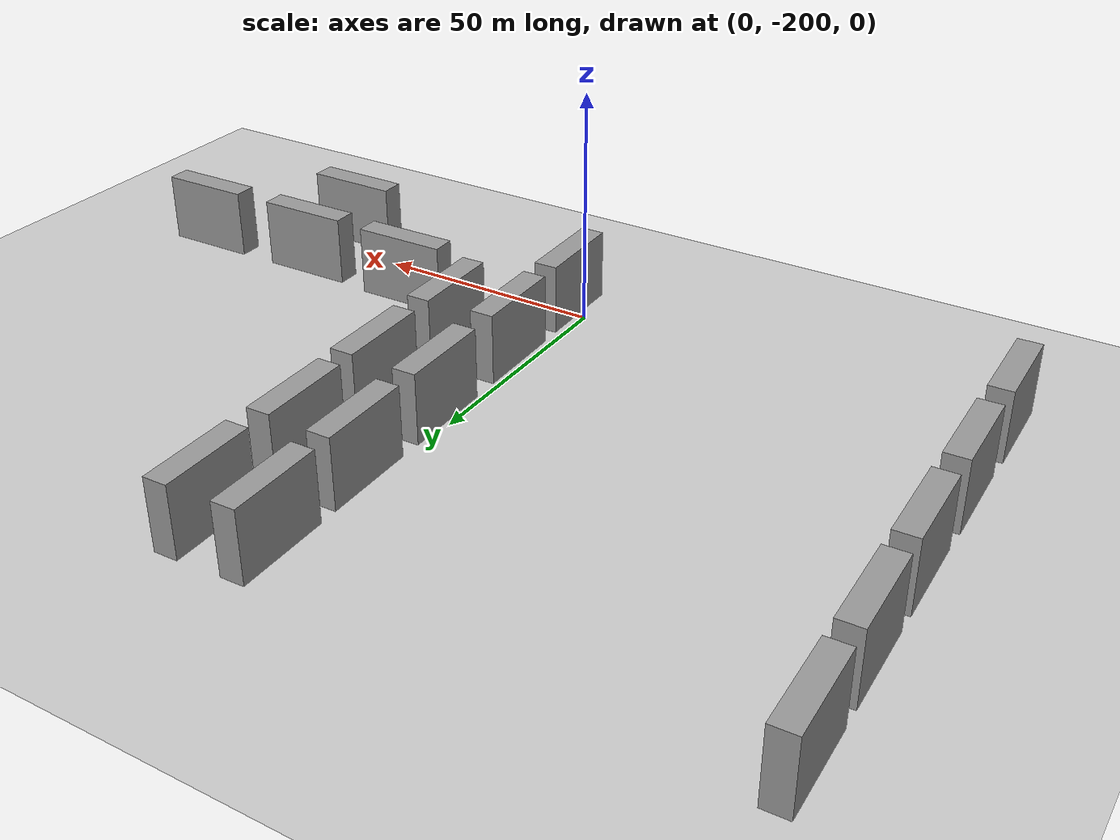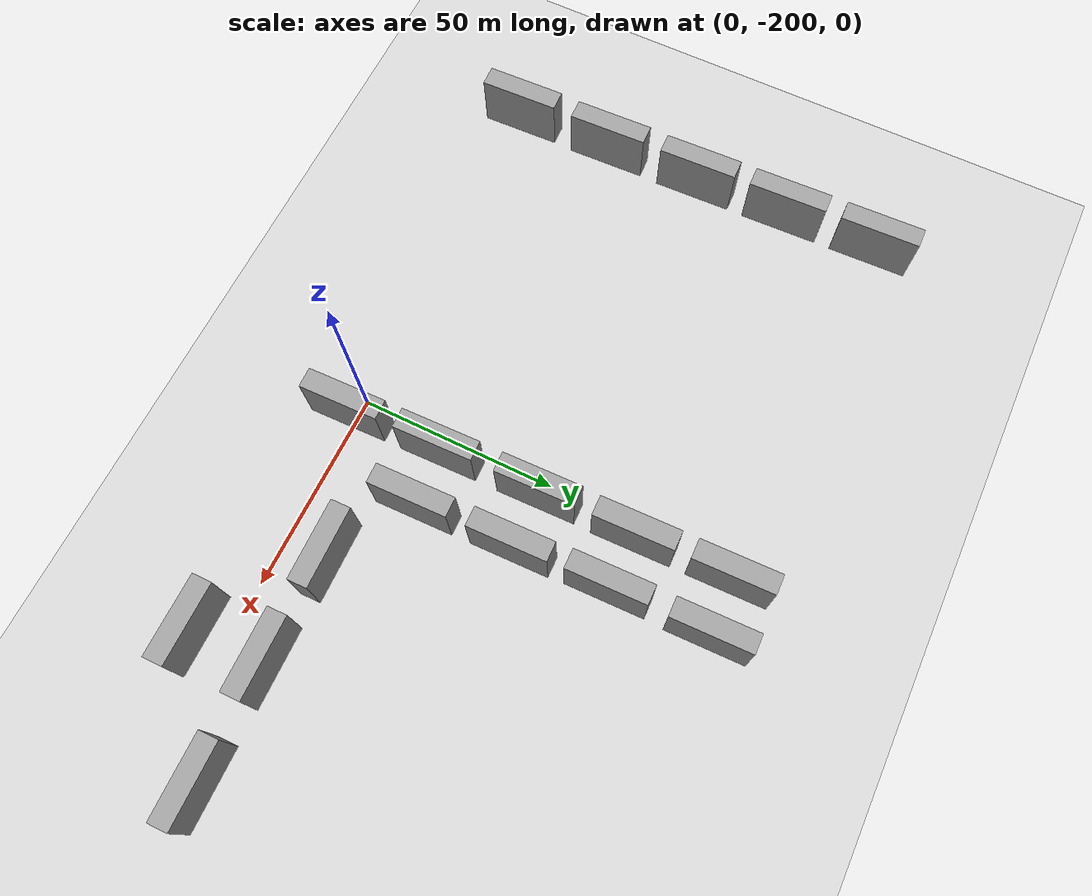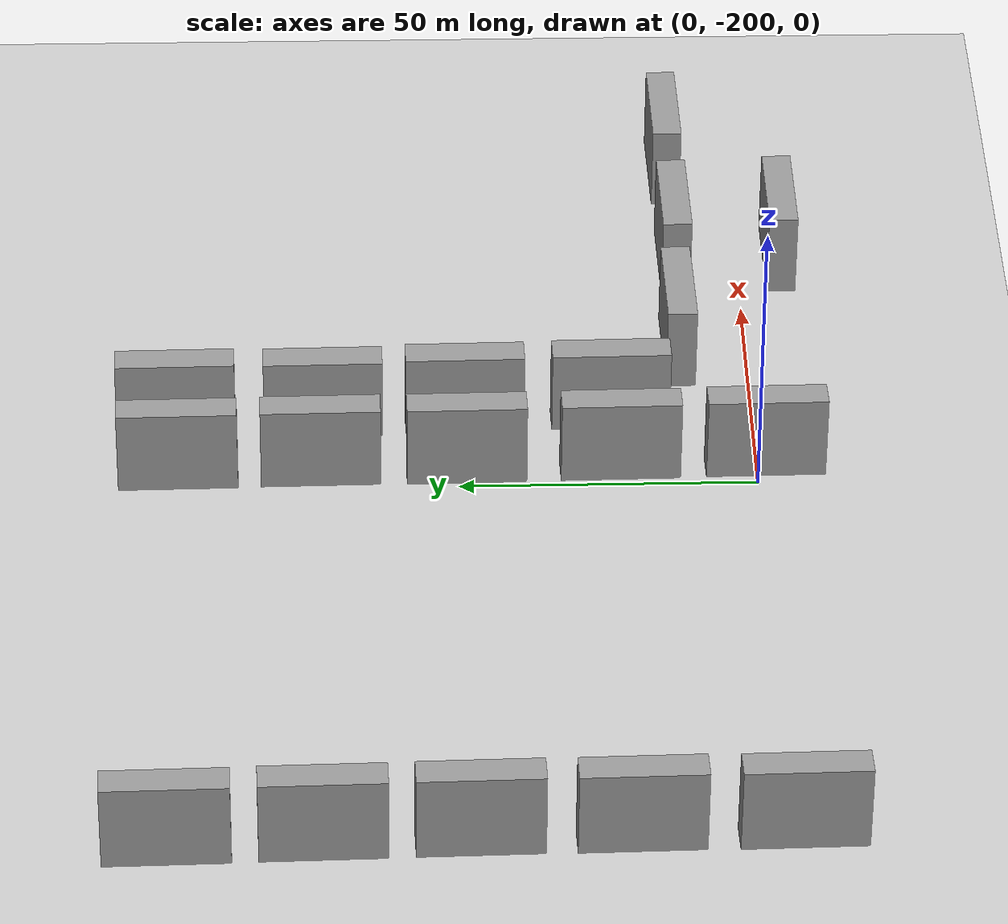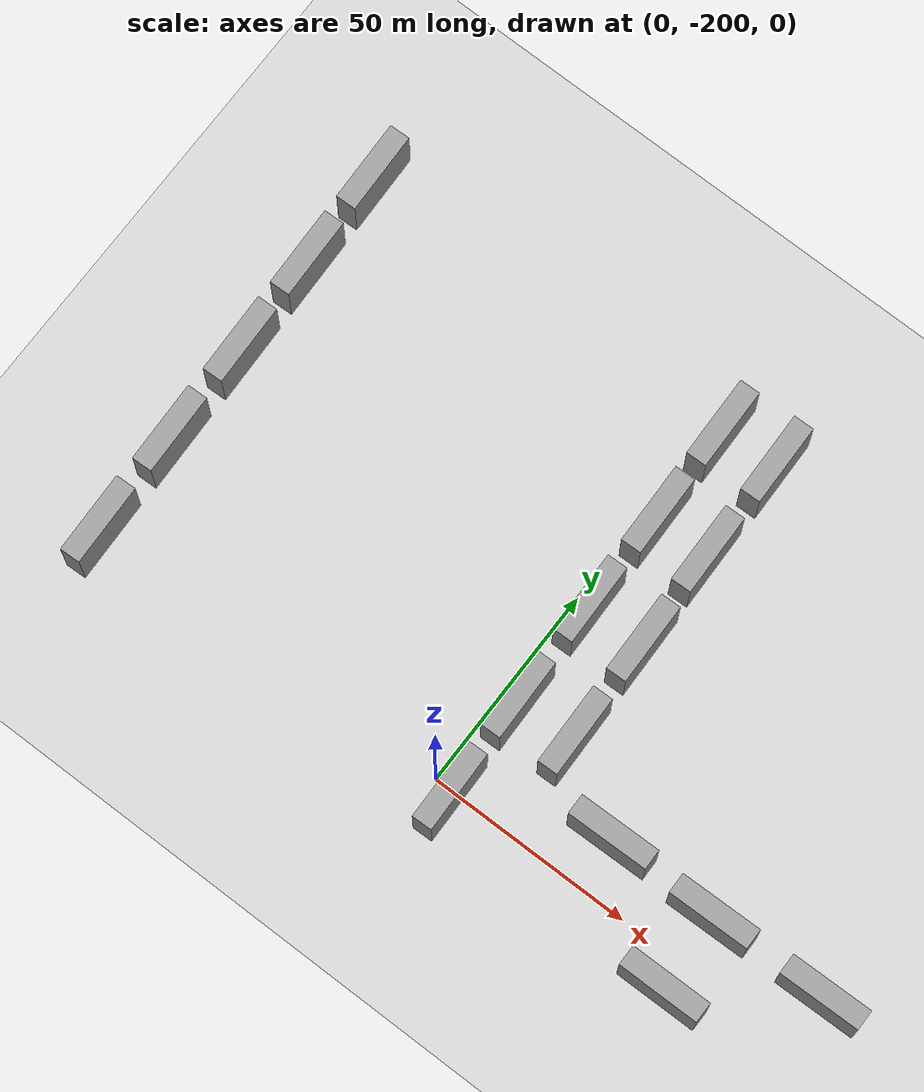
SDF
<sdf version="1.6">
 <world name="darpa_boxes">
  <model name="ground_plane">
   <static>1</static>
   <link name="link">
    <collision name="collision">
     <geometry><plane><normal>0 0 1</normal><size>2000 2000</size></plane></geometry>
     <surface>
      <contact><collide_bitmask>65535</collide_bitmask></contact>
      <friction><ode><mu>100</mu><mu2>50</mu2></ode></friction>
     </surface>
    </collision>
    <visual name="visual">
     <cast_shadows>0</cast_shadows>
     <geometry><plane><normal>0 0 1</normal><size>2000 2000</size></plane></geometry>
     <material>
      <script><uri>file://media/materials/scripts/gazebo.material</uri><name>Gazebo/Grey</name></script>
     </material>
    </visual>
   </link>
  </model>
  <model name="long_box_clone_clone_0">
   <link name="link">
    <inertial>
     <mass>1</mass>
     <inertia>
      <ixx>0.166667</ixx>
      <ixy>0</ixy>
      <ixz>0</ixz>
      <iyy>0.166667</iyy>
      <iyz>0</iyz>
      <izz>0.166667</izz>
     </inertia>
     <pose>0 0 7.5 0 -0 0</pose>
    </inertial>
    <visual name="visual">
     <geometry><box><size>5 20 15</size></box></geometry>
     <material>
      <script><name>Gazebo/Grey</name><uri>file://media/materials/scripts/gazebo.material</uri></script>
      <shader type="vertex"><normal_map>__default__</normal_map></shader>
      <ambient>0.3 0.3 0.3 1</ambient>
      <diffuse>0.7 0.7 0.7 1</diffuse>
      <specular>0.01 0.01 0.01 1</specular>
      <emissive>0 0 0 1</emissive>
     </material>
     <pose>0 0 7.5 0 -0 0</pose>
    </visual>
    <collision name="collision">
     <pose>0 0 7.5 0 -0 0</pose>
     <geometry><box><size>5 20 15</size></box></geometry>
     <surface>
      <friction>
       <ode><mu>1</mu><mu2>1</mu2><fdir1>0 0 0</fdir1><slip1>0</slip1><slip2>0</slip2></ode>
       <torsional>
        <coefficient>1</coefficient>
        <patch_radius>0</patch_radius>
        <surface_radius>0</surface_radius>
        <use_patch_radius>1</use_patch_radius>
        <ode><slip>0</slip></ode>
       </torsional>
      </friction>
      <bounce><restitution_coefficient>0</restitution_coefficient><threshold>1e+06</threshold></bounce>
      <contact>
       <collide_without_contact>0</collide_without_contact>
       <collide_without_contact_bitmask>1</collide_without_contact_bitmask>
       <collide_bitmask>1</collide_bitmask>
       <ode>
        <soft_cfm>0</soft_cfm>
        <soft_erp>0.2</soft_erp>
        <kp>1e+13</kp>
        <kd>1</kd>
        <max_vel>0.01</max_vel>
        <min_depth>0</min_depth>
       </ode>
       <bullet>
        <split_impulse>1</split_impulse>
        <split_impulse_penetration_threshold>-0.01</split_impulse_penetration_threshold>
        <soft_cfm>0</soft_cfm>
        <soft_erp>0.2</soft_erp>
        <kp>1e+13</kp>
        <kd>1</kd>
       </bullet>
      </contact>
     </surface>
    </collision>
   </link>
   <static>1</static>
   <pose>2.95301 -102.999 -0.049551 0.005047 -0.000114 0.022472</pose>
  </model>
  <model name="long_box_clone_clone_1">
   <link name="link">
    <inertial>
     <mass>1</mass>
     <inertia>
      <ixx>0.166667</ixx>
      <ixy>0</ixy>
      <ixz>0</ixz>
      <iyy>0.166667</iyy>
      <iyz>0</iyz>
      <izz>0.166667</izz>
     </inertia>
     <pose>0 0 7.5 0 -0 0</pose>
    </inertial>
    <visual name="visual">
     <geometry><box><size>5 20 15</size></box></geometry>
     <material>
      <script><name>Gazebo/Grey</name><uri>file://media/materials/scripts/gazebo.material</uri></script>
      <shader type="vertex"><normal_map>__default__</normal_map></shader>
      <ambient>0.3 0.3 0.3 1</ambient>
      <diffuse>0.7 0.7 0.7 1</diffuse>
      <specular>0.01 0.01 0.01 1</specular>
      <emissive>0 0 0 1</emissive>
     </material>
     <pose>0 0 7.5 0 -0 0</pose>
    </visual>
    <collision name="collision">
     <pose>0 0 7.5 0 -0 0</pose>
     <geometry><box><size>5 20 15</size></box></geometry>
     <surface>
      <friction>
       <ode><mu>1</mu><mu2>1</mu2><fdir1>0 0 0</fdir1><slip1>0</slip1><slip2>0</slip2></ode>
       <torsional>
        <coefficient>1</coefficient>
        <patch_radius>0</patch_radius>
        <surface_radius>0</surface_radius>
        <use_patch_radius>1</use_patch_radius>
        <ode><slip>0</slip></ode>
       </torsional>
      </friction>
      <bounce><restitution_coefficient>0</restitution_coefficient><threshold>1e+06</threshold></bounce>
      <contact>
       <collide_without_contact>0</collide_without_contact>
       <collide_without_contact_bitmask>1</collide_without_contact_bitmask>
       <collide_bitmask>1</collide_bitmask>
       <ode>
        <soft_cfm>0</soft_cfm>
        <soft_erp>0.2</soft_erp>
        <kp>1e+13</kp>
        <kd>1</kd>
        <max_vel>0.01</max_vel>
        <min_depth>0</min_depth>
       </ode>
       <bullet>
        <split_impulse>1</split_impulse>
        <split_impulse_penetration_threshold>-0.01</split_impulse_penetration_threshold>
        <soft_cfm>0</soft_cfm>
        <soft_erp>0.2</soft_erp>
        <kp>1e+13</kp>
        <kd>1</kd>
       </bullet>
      </contact>
     </surface>
    </collision>
   </link>
   <static>1</static>
   <pose>3.43621 -126.848 -0.049551 0.005047 -0.000114 0.022472</pose>
  </model>
  <model name="long_box_clone_clone_2">
   <link name="link">
    <inertial>
     <mass>1</mass>
     <inertia>
      <ixx>0.166667</ixx>
      <ixy>0</ixy>
      <ixz>0</ixz>
      <iyy>0.166667</iyy>
      <iyz>0</iyz>
      <izz>0.166667</izz>
     </inertia>
     <pose>0 0 7.5 0 -0 0</pose>
    </inertial>
    <visual name="visual">
     <geometry><box><size>5 20 15</size></box></geometry>
     <material>
      <script><name>Gazebo/Grey</name><uri>file://media/materials/scripts/gazebo.material</uri></script>
      <shader type="vertex"><normal_map>__default__</normal_map></shader>
      <ambient>0.3 0.3 0.3 1</ambient>
      <diffuse>0.7 0.7 0.7 1</diffuse>
      <specular>0.01 0.01 0.01 1</specular>
      <emissive>0 0 0 1</emissive>
     </material>
     <pose>0 0 7.5 0 -0 0</pose>
    </visual>
    <collision name="collision">
     <pose>0 0 7.5 0 -0 0</pose>
     <geometry><box><size>5 20 15</size></box></geometry>
     <surface>
      <friction>
       <ode><mu>1</mu><mu2>1</mu2><fdir1>0 0 0</fdir1><slip1>0</slip1><slip2>0</slip2></ode>
       <torsional>
        <coefficient>1</coefficient>
        <patch_radius>0</patch_radius>
        <surface_radius>0</surface_radius>
        <use_patch_radius>1</use_patch_radius>
        <ode><slip>0</slip></ode>
       </torsional>
      </friction>
      <bounce><restitution_coefficient>0</restitution_coefficient><threshold>1e+06</threshold></bounce>
      <contact>
       <collide_without_contact>0</collide_without_contact>
       <collide_without_contact_bitmask>1</collide_without_contact_bitmask>
       <collide_bitmask>1</collide_bitmask>
       <ode>
        <soft_cfm>0</soft_cfm>
        <soft_erp>0.2</soft_erp>
        <kp>1e+13</kp>
        <kd>1</kd>
        <max_vel>0.01</max_vel>
        <min_depth>0</min_depth>
       </ode>
       <bullet>
        <split_impulse>1</split_impulse>
        <split_impulse_penetration_threshold>-0.01</split_impulse_penetration_threshold>
        <soft_cfm>0</soft_cfm>
        <soft_erp>0.2</soft_erp>
        <kp>1e+13</kp>
        <kd>1</kd>
       </bullet>
      </contact>
     </surface>
    </collision>
   </link>
   <static>1</static>
   <pose>3.68929 -151.222 -0.049551 0.005047 -0.000114 0.022472</pose>
  </model>
  <model name="long_box_clone_clone_3">
   <link name="link">
    <inertial>
     <mass>1</mass>
     <inertia>
      <ixx>0.166667</ixx>
      <ixy>0</ixy>
      <ixz>0</ixz>
      <iyy>0.166667</iyy>
      <iyz>0</iyz>
      <izz>0.166667</izz>
     </inertia>
     <pose>0 0 7.5 0 -0 0</pose>
    </inertial>
    <visual name="visual">
     <geometry><box><size>5 20 15</size></box></geometry>
     <material>
      <script><name>Gazebo/Grey</name><uri>file://media/materials/scripts/gazebo.material</uri></script>
      <shader type="vertex"><normal_map>__default__</normal_map></shader>
      <ambient>0.3 0.3 0.3 1</ambient>
      <diffuse>0.7 0.7 0.7 1</diffuse>
      <specular>0.01 0.01 0.01 1</specular>
      <emissive>0 0 0 1</emissive>
     </material>
     <pose>0 0 7.5 0 -0 0</pose>
    </visual>
    <collision name="collision">
     <pose>0 0 7.5 0 -0 0</pose>
     <geometry><box><size>5 20 15</size></box></geometry>
     <surface>
      <friction>
       <ode><mu>1</mu><mu2>1</mu2><fdir1>0 0 0</fdir1><slip1>0</slip1><slip2>0</slip2></ode>
       <torsional>
        <coefficient>1</coefficient>
        <patch_radius>0</patch_radius>
        <surface_radius>0</surface_radius>
        <use_patch_radius>1</use_patch_radius>
        <ode><slip>0</slip></ode>
       </torsional>
      </friction>
      <bounce><restitution_coefficient>0</restitution_coefficient><threshold>1e+06</threshold></bounce>
      <contact>
       <collide_without_contact>0</collide_without_contact>
       <collide_without_contact_bitmask>1</collide_without_contact_bitmask>
       <collide_bitmask>1</collide_bitmask>
       <ode>
        <soft_cfm>0</soft_cfm>
        <soft_erp>0.2</soft_erp>
        <kp>1e+13</kp>
        <kd>1</kd>
        <max_vel>0.01</max_vel>
        <min_depth>0</min_depth>
       </ode>
       <bullet>
        <split_impulse>1</split_impulse>
        <split_impulse_penetration_threshold>-0.01</split_impulse_penetration_threshold>
        <soft_cfm>0</soft_cfm>
        <soft_erp>0.2</soft_erp>
        <kp>1e+13</kp>
        <kd>1</kd>
       </bullet>
      </contact>
     </surface>
    </collision>
   </link>
   <static>1</static>
   <pose>4.1621 -176.965 -0.049551 0.005047 -0.000114 0.022472</pose>
  </model>
  <model name="long_box_clone_clone_4">
   <link name="link">
    <inertial>
     <mass>1</mass>
     <inertia>
      <ixx>0.166667</ixx>
      <ixy>0</ixy>
      <ixz>0</ixz>
      <iyy>0.166667</iyy>
      <iyz>0</iyz>
      <izz>0.166667</izz>
     </inertia>
     <pose>0 0 7.5 0 -0 0</pose>
    </inertial>
    <visual name="visual">
     <geometry><box><size>5 20 15</size></box></geometry>
     <material>
      <script><name>Gazebo/Grey</name><uri>file://media/materials/scripts/gazebo.material</uri></script>
      <shader type="vertex"><normal_map>__default__</normal_map></shader>
      <ambient>0.3 0.3 0.3 1</ambient>
      <diffuse>0.7 0.7 0.7 1</diffuse>
      <specular>0.01 0.01 0.01 1</specular>
      <emissive>0 0 0 1</emissive>
     </material>
     <pose>0 0 7.5 0 -0 0</pose>
    </visual>
    <collision name="collision">
     <pose>0 0 7.5 0 -0 0</pose>
     <geometry><box><size>5 20 15</size></box></geometry>
     <surface>
      <friction>
       <ode><mu>1</mu><mu2>1</mu2><fdir1>0 0 0</fdir1><slip1>0</slip1><slip2>0</slip2></ode>
       <torsional>
        <coefficient>1</coefficient>
        <patch_radius>0</patch_radius>
        <surface_radius>0</surface_radius>
        <use_patch_radius>1</use_patch_radius>
        <ode><slip>0</slip></ode>
       </torsional>
      </friction>
      <bounce><restitution_coefficient>0</restitution_coefficient><threshold>1e+06</threshold></bounce>
      <contact>
       <collide_without_contact>0</collide_without_contact>
       <collide_without_contact_bitmask>1</collide_without_contact_bitmask>
       <collide_bitmask>1</collide_bitmask>
       <ode>
        <soft_cfm>0</soft_cfm>
        <soft_erp>0.2</soft_erp>
        <kp>1e+13</kp>
        <kd>1</kd>
        <max_vel>0.01</max_vel>
        <min_depth>0</min_depth>
       </ode>
       <bullet>
        <split_impulse>1</split_impulse>
        <split_impulse_penetration_threshold>-0.01</split_impulse_penetration_threshold>
        <soft_cfm>0</soft_cfm>
        <soft_erp>0.2</soft_erp>
        <kp>1e+13</kp>
        <kd>1</kd>
       </bullet>
      </contact>
     </surface>
    </collision>
   </link>
   <static>1</static>
   <pose>4.69386 -201.317 -0.049551 0.005047 -0.000114 0.022472</pose>
  </model>
  <model name="long_box_clone_clone_21">
   <link name="link">
    <inertial>
     <mass>1</mass>
     <inertia>
      <ixx>0.166667</ixx>
      <ixy>0</ixy>
      <ixz>0</ixz>
      <iyy>0.166667</iyy>
      <iyz>0</iyz>
      <izz>0.166667</izz>
     </inertia>
     <pose>0 0 7.5 0 -0 0</pose>
    </inertial>
    <visual name="visual">
     <geometry><box><size>5 20 15</size></box></geometry>
     <material>
      <script><name>Gazebo/Grey</name><uri>file://media/materials/scripts/gazebo.material</uri></script>
      <shader type="vertex"><normal_map>__default__</normal_map></shader>
      <ambient>0.3 0.3 0.3 1</ambient>
      <diffuse>0.7 0.7 0.7 1</diffuse>
      <specular>0.01 0.01 0.01 1</specular>
      <emissive>0 0 0 1</emissive>
     </material>
     <pose>0 0 7.5 0 -0 0</pose>
    </visual>
    <collision name="collision">
     <pose>0 0 7.5 0 -0 0</pose>
     <geometry><box><size>5 20 15</size></box></geometry>
     <surface>
      <friction>
       <ode><mu>1</mu><mu2>1</mu2><fdir1>0 0 0</fdir1><slip1>0</slip1><slip2>0</slip2></ode>
       <torsional>
        <coefficient>1</coefficient>
        <patch_radius>0</patch_radius>
        <surface_radius>0</surface_radius>
        <use_patch_radius>1</use_patch_radius>
        <ode><slip>0</slip></ode>
       </torsional>
      </friction>
      <bounce><restitution_coefficient>0</restitution_coefficient><threshold>1e+06</threshold></bounce>
      <contact>
       <collide_without_contact>0</collide_without_contact>
       <collide_without_contact_bitmask>1</collide_without_contact_bitmask>
       <collide_bitmask>1</collide_bitmask>
       <ode>
        <soft_cfm>0</soft_cfm>
        <soft_erp>0.2</soft_erp>
        <kp>1e+13</kp>
        <kd>1</kd>
        <max_vel>0.01</max_vel>
        <min_depth>0</min_depth>
       </ode>
       <bullet>
        <split_impulse>1</split_impulse>
        <split_impulse_penetration_threshold>-0.01</split_impulse_penetration_threshold>
        <soft_cfm>0</soft_cfm>
        <soft_erp>0.2</soft_erp>
        <kp>1e+13</kp>
        <kd>1</kd>
       </bullet>
      </contact>
     </surface>
    </collision>
   </link>
   <static>1</static>
   <pose>18.4209 -175.838 -0.049551 0.005047 -0.000114 0.022472</pose>
  </model>
  <model name="long_box_clone_clone_22">
   <link name="link">
    <inertial>
     <mass>1</mass>
     <inertia>
      <ixx>0.166667</ixx>
      <ixy>0</ixy>
      <ixz>0</ixz>
      <iyy>0.166667</iyy>
      <iyz>0</iyz>
      <izz>0.166667</izz>
     </inertia>
     <pose>0 0 7.5 0 -0 0</pose>
    </inertial>
    <visual name="visual">
     <geometry><box><size>5 20 15</size></box></geometry>
     <material>
      <script><name>Gazebo/Grey</name><uri>file://media/materials/scripts/gazebo.material</uri></script>
      <shader type="vertex"><normal_map>__default__</normal_map></shader>
      <ambient>0.3 0.3 0.3 1</ambient>
      <diffuse>0.7 0.7 0.7 1</diffuse>
      <specular>0.01 0.01 0.01 1</specular>
      <emissive>0 0 0 1</emissive>
     </material>
     <pose>0 0 7.5 0 -0 0</pose>
    </visual>
    <collision name="collision">
     <pose>0 0 7.5 0 -0 0</pose>
     <geometry><box><size>5 20 15</size></box></geometry>
     <surface>
      <friction>
       <ode><mu>1</mu><mu2>1</mu2><fdir1>0 0 0</fdir1><slip1>0</slip1><slip2>0</slip2></ode>
       <torsional>
        <coefficient>1</coefficient>
        <patch_radius>0</patch_radius>
        <surface_radius>0</surface_radius>
        <use_patch_radius>1</use_patch_radius>
        <ode><slip>0</slip></ode>
       </torsional>
      </friction>
      <bounce><restitution_coefficient>0</restitution_coefficient><threshold>1e+06</threshold></bounce>
      <contact>
       <collide_without_contact>0</collide_without_contact>
       <collide_without_contact_bitmask>1</collide_without_contact_bitmask>
       <collide_bitmask>1</collide_bitmask>
       <ode>
        <soft_cfm>0</soft_cfm>
        <soft_erp>0.2</soft_erp>
        <kp>1e+13</kp>
        <kd>1</kd>
        <max_vel>0.01</max_vel>
        <min_depth>0</min_depth>
       </ode>
       <bullet>
        <split_impulse>1</split_impulse>
        <split_impulse_penetration_threshold>-0.01</split_impulse_penetration_threshold>
        <soft_cfm>0</soft_cfm>
        <soft_erp>0.2</soft_erp>
        <kp>1e+13</kp>
        <kd>1</kd>
       </bullet>
      </contact>
     </surface>
    </collision>
   </link>
   <static>1</static>
   <pose>17.8317 -151.144 -0.049551 0.005047 -0.000114 0.022472</pose>
  </model>
  <model name="long_box_clone_clone_23">
   <link name="link">
    <inertial>
     <mass>1</mass>
     <inertia>
      <ixx>0.166667</ixx>
      <ixy>0</ixy>
      <ixz>0</ixz>
      <iyy>0.166667</iyy>
      <iyz>0</iyz>
      <izz>0.166667</izz>
     </inertia>
     <pose>0 0 7.5 0 -0 0</pose>
    </inertial>
    <visual name="visual">
     <geometry><box><size>5 20 15</size></box></geometry>
     <material>
      <script><name>Gazebo/Grey</name><uri>file://media/materials/scripts/gazebo.material</uri></script>
      <shader type="vertex"><normal_map>__default__</normal_map></shader>
      <ambient>0.3 0.3 0.3 1</ambient>
      <diffuse>0.7 0.7 0.7 1</diffuse>
      <specular>0.01 0.01 0.01 1</specular>
      <emissive>0 0 0 1</emissive>
     </material>
     <pose>0 0 7.5 0 -0 0</pose>
    </visual>
    <collision name="collision">
     <pose>0 0 7.5 0 -0 0</pose>
     <geometry><box><size>5 20 15</size></box></geometry>
     <surface>
      <friction>
       <ode><mu>1</mu><mu2>1</mu2><fdir1>0 0 0</fdir1><slip1>0</slip1><slip2>0</slip2></ode>
       <torsional>
        <coefficient>1</coefficient>
        <patch_radius>0</patch_radius>
        <surface_radius>0</surface_radius>
        <use_patch_radius>1</use_patch_radius>
        <ode><slip>0</slip></ode>
       </torsional>
      </friction>
      <bounce><restitution_coefficient>0</restitution_coefficient><threshold>1e+06</threshold></bounce>
      <contact>
       <collide_without_contact>0</collide_without_contact>
       <collide_without_contact_bitmask>1</collide_without_contact_bitmask>
       <collide_bitmask>1</collide_bitmask>
       <ode>
        <soft_cfm>0</soft_cfm>
        <soft_erp>0.2</soft_erp>
        <kp>1e+13</kp>
        <kd>1</kd>
        <max_vel>0.01</max_vel>
        <min_depth>0</min_depth>
       </ode>
       <bullet>
        <split_impulse>1</split_impulse>
        <split_impulse_penetration_threshold>-0.01</split_impulse_penetration_threshold>
        <soft_cfm>0</soft_cfm>
        <soft_erp>0.2</soft_erp>
        <kp>1e+13</kp>
        <kd>1</kd>
       </bullet>
      </contact>
     </surface>
    </collision>
   </link>
   <static>1</static>
   <pose>17.0274 -127.223 -0.049551 0.005047 -0.000114 0.022472</pose>
  </model>
  <model name="long_box_clone_clone_24">
   <link name="link">
    <inertial>
     <mass>1</mass>
     <inertia>
      <ixx>0.166667</ixx>
      <ixy>0</ixy>
      <ixz>0</ixz>
      <iyy>0.166667</iyy>
      <iyz>0</iyz>
      <izz>0.166667</izz>
     </inertia>
     <pose>0 0 7.5 0 -0 0</pose>
    </inertial>
    <visual name="visual">
     <geometry><box><size>5 20 15</size></box></geometry>
     <material>
      <script><name>Gazebo/Grey</name><uri>file://media/materials/scripts/gazebo.material</uri></script>
      <shader type="vertex"><normal_map>__default__</normal_map></shader>
      <ambient>0.3 0.3 0.3 1</ambient>
      <diffuse>0.7 0.7 0.7 1</diffuse>
      <specular>0.01 0.01 0.01 1</specular>
      <emissive>0 0 0 1</emissive>
     </material>
     <pose>0 0 7.5 0 -0 0</pose>
    </visual>
    <collision name="collision">
     <pose>0 0 7.5 0 -0 0</pose>
     <geometry><box><size>5 20 15</size></box></geometry>
     <surface>
      <friction>
       <ode><mu>1</mu><mu2>1</mu2><fdir1>0 0 0</fdir1><slip1>0</slip1><slip2>0</slip2></ode>
       <torsional>
        <coefficient>1</coefficient>
        <patch_radius>0</patch_radius>
        <surface_radius>0</surface_radius>
        <use_patch_radius>1</use_patch_radius>
        <ode><slip>0</slip></ode>
       </torsional>
      </friction>
      <bounce><restitution_coefficient>0</restitution_coefficient><threshold>1e+06</threshold></bounce>
      <contact>
       <collide_without_contact>0</collide_without_contact>
       <collide_without_contact_bitmask>1</collide_without_contact_bitmask>
       <collide_bitmask>1</collide_bitmask>
       <ode>
        <soft_cfm>0</soft_cfm>
        <soft_erp>0.2</soft_erp>
        <kp>1e+13</kp>
        <kd>1</kd>
        <max_vel>0.01</max_vel>
        <min_depth>0</min_depth>
       </ode>
       <bullet>
        <split_impulse>1</split_impulse>
        <split_impulse_penetration_threshold>-0.01</split_impulse_penetration_threshold>
        <soft_cfm>0</soft_cfm>
        <soft_erp>0.2</soft_erp>
        <kp>1e+13</kp>
        <kd>1</kd>
       </bullet>
      </contact>
     </surface>
    </collision>
   </link>
   <static>1</static>
   <pose>16.8933 -102.381 -0.049551 0.005047 -0.000114 0.022472</pose>
  </model>
  <model name="long_box_clone_clone_29_clone_3_clone_clone_5">
   <link name="link">
    <inertial>
     <mass>1</mass>
     <inertia>
      <ixx>0.166667</ixx>
      <ixy>0</ixy>
      <ixz>0</ixz>
      <iyy>0.166667</iyy>
      <iyz>0</iyz>
      <izz>0.166667</izz>
     </inertia>
     <pose>0 0 7.5 0 -0 0</pose>
    </inertial>
    <visual name="visual">
     <geometry><box><size>5 20 15</size></box></geometry>
     <material>
      <script><name>Gazebo/Grey</name><uri>file://media/materials/scripts/gazebo.material</uri></script>
      <shader type="vertex"><normal_map>__default__</normal_map></shader>
      <ambient>0.3 0.3 0.3 1</ambient>
      <diffuse>0.7 0.7 0.7 1</diffuse>
      <specular>0.01 0.01 0.01 1</specular>
      <emissive>0 0 0 1</emissive>
     </material>
     <pose>0 0 7.5 0 -0 0</pose>
    </visual>
    <collision name="collision">
     <pose>0 0 7.5 0 -0 0</pose>
     <geometry><box><size>5 20 15</size></box></geometry>
     <surface>
      <friction>
       <ode><mu>1</mu><mu2>1</mu2><fdir1>0 0 0</fdir1><slip1>0</slip1><slip2>0</slip2></ode>
       <torsional>
        <coefficient>1</coefficient>
        <patch_radius>0</patch_radius>
        <surface_radius>0</surface_radius>
        <use_patch_radius>1</use_patch_radius>
        <ode><slip>0</slip></ode>
       </torsional>
      </friction>
      <bounce><restitution_coefficient>0</restitution_coefficient><threshold>1e+06</threshold></bounce>
      <contact>
       <collide_without_contact>0</collide_without_contact>
       <collide_without_contact_bitmask>1</collide_without_contact_bitmask>
       <collide_bitmask>1</collide_bitmask>
       <ode>
        <soft_cfm>0</soft_cfm>
        <soft_erp>0.2</soft_erp>
        <kp>1e+13</kp>
        <kd>1</kd>
        <max_vel>0.01</max_vel>
        <min_depth>0</min_depth>
       </ode>
       <bullet>
        <split_impulse>1</split_impulse>
        <split_impulse_penetration_threshold>-0.01</split_impulse_penetration_threshold>
        <soft_cfm>0</soft_cfm>
        <soft_erp>0.2</soft_erp>
        <kp>1e+13</kp>
        <kd>1</kd>
       </bullet>
      </contact>
     </surface>
    </collision>
   </link>
   <static>1</static>
   <pose>-90.0613 -201.445 -0.049551 0.005046 -0.000145 0.028592</pose>
  </model>
  <model name="long_box_clone_clone_29_clone_3_clone_clone_6">
   <link name="link">
    <inertial>
     <mass>1</mass>
     <inertia>
      <ixx>0.166667</ixx>
      <ixy>0</ixy>
      <ixz>0</ixz>
      <iyy>0.166667</iyy>
      <iyz>0</iyz>
      <izz>0.166667</izz>
     </inertia>
     <pose>0 0 7.5 0 -0 0</pose>
    </inertial>
    <visual name="visual">
     <geometry><box><size>5 20 15</size></box></geometry>
     <material>
      <script><name>Gazebo/Grey</name><uri>file://media/materials/scripts/gazebo.material</uri></script>
      <shader type="vertex"><normal_map>__default__</normal_map></shader>
      <ambient>0.3 0.3 0.3 1</ambient>
      <diffuse>0.7 0.7 0.7 1</diffuse>
      <specular>0.01 0.01 0.01 1</specular>
      <emissive>0 0 0 1</emissive>
     </material>
     <pose>0 0 7.5 0 -0 0</pose>
    </visual>
    <collision name="collision">
     <pose>0 0 7.5 0 -0 0</pose>
     <geometry><box><size>5 20 15</size></box></geometry>
     <surface>
      <friction>
       <ode><mu>1</mu><mu2>1</mu2><fdir1>0 0 0</fdir1><slip1>0</slip1><slip2>0</slip2></ode>
       <torsional>
        <coefficient>1</coefficient>
        <patch_radius>0</patch_radius>
        <surface_radius>0</surface_radius>
        <use_patch_radius>1</use_patch_radius>
        <ode><slip>0</slip></ode>
       </torsional>
      </friction>
      <bounce><restitution_coefficient>0</restitution_coefficient><threshold>1e+06</threshold></bounce>
      <contact>
       <collide_without_contact>0</collide_without_contact>
       <collide_without_contact_bitmask>1</collide_without_contact_bitmask>
       <collide_bitmask>1</collide_bitmask>
       <ode>
        <soft_cfm>0</soft_cfm>
        <soft_erp>0.2</soft_erp>
        <kp>1e+13</kp>
        <kd>1</kd>
        <max_vel>0.01</max_vel>
        <min_depth>0</min_depth>
       </ode>
       <bullet>
        <split_impulse>1</split_impulse>
        <split_impulse_penetration_threshold>-0.01</split_impulse_penetration_threshold>
        <soft_cfm>0</soft_cfm>
        <soft_erp>0.2</soft_erp>
        <kp>1e+13</kp>
        <kd>1</kd>
       </bullet>
      </contact>
     </surface>
    </collision>
   </link>
   <static>1</static>
   <pose>-90.425 -176.407 -0.049551 0.005046 -0.000145 0.028592</pose>
  </model>
  <model name="long_box_clone_clone_29_clone_3_clone_clone_7">
   <link name="link">
    <inertial>
     <mass>1</mass>
     <inertia>
      <ixx>0.166667</ixx>
      <ixy>0</ixy>
      <ixz>0</ixz>
      <iyy>0.166667</iyy>
      <iyz>0</iyz>
      <izz>0.166667</izz>
     </inertia>
     <pose>0 0 7.5 0 -0 0</pose>
    </inertial>
    <visual name="visual">
     <geometry><box><size>5 20 15</size></box></geometry>
     <material>
      <script><name>Gazebo/Grey</name><uri>file://media/materials/scripts/gazebo.material</uri></script>
      <shader type="vertex"><normal_map>__default__</normal_map></shader>
      <ambient>0.3 0.3 0.3 1</ambient>
      <diffuse>0.7 0.7 0.7 1</diffuse>
      <specular>0.01 0.01 0.01 1</specular>
      <emissive>0 0 0 1</emissive>
     </material>
     <pose>0 0 7.5 0 -0 0</pose>
    </visual>
    <collision name="collision">
     <pose>0 0 7.5 0 -0 0</pose>
     <geometry><box><size>5 20 15</size></box></geometry>
     <surface>
      <friction>
       <ode><mu>1</mu><mu2>1</mu2><fdir1>0 0 0</fdir1><slip1>0</slip1><slip2>0</slip2></ode>
       <torsional>
        <coefficient>1</coefficient>
        <patch_radius>0</patch_radius>
        <surface_radius>0</surface_radius>
        <use_patch_radius>1</use_patch_radius>
        <ode><slip>0</slip></ode>
       </torsional>
      </friction>
      <bounce><restitution_coefficient>0</restitution_coefficient><threshold>1e+06</threshold></bounce>
      <contact>
       <collide_without_contact>0</collide_without_contact>
       <collide_without_contact_bitmask>1</collide_without_contact_bitmask>
       <collide_bitmask>1</collide_bitmask>
       <ode>
        <soft_cfm>0</soft_cfm>
        <soft_erp>0.2</soft_erp>
        <kp>1e+13</kp>
        <kd>1</kd>
        <max_vel>0.01</max_vel>
        <min_depth>0</min_depth>
       </ode>
       <bullet>
        <split_impulse>1</split_impulse>
        <split_impulse_penetration_threshold>-0.01</split_impulse_penetration_threshold>
        <soft_cfm>0</soft_cfm>
        <soft_erp>0.2</soft_erp>
        <kp>1e+13</kp>
        <kd>1</kd>
       </bullet>
      </contact>
     </surface>
    </collision>
   </link>
   <static>1</static>
   <pose>-90.8552 -151.555 -0.049551 0.005046 -0.000145 0.028592</pose>
  </model>
  <model name="long_box_clone_clone_29_clone_3_clone_clone_8">
   <link name="link">
    <inertial>
     <mass>1</mass>
     <inertia>
      <ixx>0.166667</ixx>
      <ixy>0</ixy>
      <ixz>0</ixz>
      <iyy>0.166667</iyy>
      <iyz>0</iyz>
      <izz>0.166667</izz>
     </inertia>
     <pose>0 0 7.5 0 -0 0</pose>
    </inertial>
    <visual name="visual">
     <geometry><box><size>5 20 15</size></box></geometry>
     <material>
      <script><name>Gazebo/Grey</name><uri>file://media/materials/scripts/gazebo.material</uri></script>
      <shader type="vertex"><normal_map>__default__</normal_map></shader>
      <ambient>0.3 0.3 0.3 1</ambient>
      <diffuse>0.7 0.7 0.7 1</diffuse>
      <specular>0.01 0.01 0.01 1</specular>
      <emissive>0 0 0 1</emissive>
     </material>
     <pose>0 0 7.5 0 -0 0</pose>
    </visual>
    <collision name="collision">
     <pose>0 0 7.5 0 -0 0</pose>
     <geometry><box><size>5 20 15</size></box></geometry>
     <surface>
      <friction>
       <ode><mu>1</mu><mu2>1</mu2><fdir1>0 0 0</fdir1><slip1>0</slip1><slip2>0</slip2></ode>
       <torsional>
        <coefficient>1</coefficient>
        <patch_radius>0</patch_radius>
        <surface_radius>0</surface_radius>
        <use_patch_radius>1</use_patch_radius>
        <ode><slip>0</slip></ode>
       </torsional>
      </friction>
      <bounce><restitution_coefficient>0</restitution_coefficient><threshold>1e+06</threshold></bounce>
      <contact>
       <collide_without_contact>0</collide_without_contact>
       <collide_without_contact_bitmask>1</collide_without_contact_bitmask>
       <collide_bitmask>1</collide_bitmask>
       <ode>
        <soft_cfm>0</soft_cfm>
        <soft_erp>0.2</soft_erp>
        <kp>1e+13</kp>
        <kd>1</kd>
        <max_vel>0.01</max_vel>
        <min_depth>0</min_depth>
       </ode>
       <bullet>
        <split_impulse>1</split_impulse>
        <split_impulse_penetration_threshold>-0.01</split_impulse_penetration_threshold>
        <soft_cfm>0</soft_cfm>
        <soft_erp>0.2</soft_erp>
        <kp>1e+13</kp>
        <kd>1</kd>
       </bullet>
      </contact>
     </surface>
    </collision>
   </link>
   <static>1</static>
   <pose>-91.455 -127.41 -0.049551 0.005046 -0.000145 0.028592</pose>
  </model>
  <model name="long_box_clone_clone_29_clone_3_clone_clone_9">
   <link name="link">
    <inertial>
     <mass>1</mass>
     <inertia>
      <ixx>0.166667</ixx>
      <ixy>0</ixy>
      <ixz>0</ixz>
      <iyy>0.166667</iyy>
      <iyz>0</iyz>
      <izz>0.166667</izz>
     </inertia>
     <pose>0 0 7.5 0 -0 0</pose>
    </inertial>
    <visual name="visual">
     <geometry><box><size>5 20 15</size></box></geometry>
     <material>
      <script><name>Gazebo/Grey</name><uri>file://media/materials/scripts/gazebo.material</uri></script>
      <shader type="vertex"><normal_map>__default__</normal_map></shader>
      <ambient>0.3 0.3 0.3 1</ambient>
      <diffuse>0.7 0.7 0.7 1</diffuse>
      <specular>0.01 0.01 0.01 1</specular>
      <emissive>0 0 0 1</emissive>
     </material>
     <pose>0 0 7.5 0 -0 0</pose>
    </visual>
    <collision name="collision">
     <pose>0 0 7.5 0 -0 0</pose>
     <geometry><box><size>5 20 15</size></box></geometry>
     <surface>
      <friction>
       <ode><mu>1</mu><mu2>1</mu2><fdir1>0 0 0</fdir1><slip1>0</slip1><slip2>0</slip2></ode>
       <torsional>
        <coefficient>1</coefficient>
        <patch_radius>0</patch_radius>
        <surface_radius>0</surface_radius>
        <use_patch_radius>1</use_patch_radius>
        <ode><slip>0</slip></ode>
       </torsional>
      </friction>
      <bounce><restitution_coefficient>0</restitution_coefficient><threshold>1e+06</threshold></bounce>
      <contact>
       <collide_without_contact>0</collide_without_contact>
       <collide_without_contact_bitmask>1</collide_without_contact_bitmask>
       <collide_bitmask>1</collide_bitmask>
       <ode>
        <soft_cfm>0</soft_cfm>
        <soft_erp>0.2</soft_erp>
        <kp>1e+13</kp>
        <kd>1</kd>
        <max_vel>0.01</max_vel>
        <min_depth>0</min_depth>
       </ode>
       <bullet>
        <split_impulse>1</split_impulse>
        <split_impulse_penetration_threshold>-0.01</split_impulse_penetration_threshold>
        <soft_cfm>0</soft_cfm>
        <soft_erp>0.2</soft_erp>
        <kp>1e+13</kp>
        <kd>1</kd>
       </bullet>
      </contact>
     </surface>
    </collision>
   </link>
   <static>1</static>
   <pose>-92.0981 -103.287 -0.049551 0.005046 -0.000145 0.028592</pose>
  </model>
  <model name="long_box_clone_clone_29_clone_3_clone_clone_14_clone_clone_0_clone_1">
   <link name="link">
    <inertial>
     <mass>1</mass>
     <inertia>
      <ixx>0.166667</ixx>
      <ixy>0</ixy>
      <ixz>0</ixz>
      <iyy>0.166667</iyy>
      <iyz>0</iyz>
      <izz>0.166667</izz>
     </inertia>
     <pose>0 0 7.5 0 -0 0</pose>
    </inertial>
    <visual name="visual">
     <geometry><box><size>5 20 15</size></box></geometry>
     <material>
      <script><name>Gazebo/Grey</name><uri>file://media/materials/scripts/gazebo.material</uri></script>
      <shader type="vertex"><normal_map>__default__</normal_map></shader>
      <ambient>0.3 0.3 0.3 1</ambient>
      <diffuse>0.7 0.7 0.7 1</diffuse>
      <specular>0.01 0.01 0.01 1</specular>
      <emissive>0 0 0 1</emissive>
     </material>
     <pose>0 0 7.5 0 -0 0</pose>
    </visual>
    <collision name="collision">
     <pose>0 0 7.5 0 -0 0</pose>
     <geometry><box><size>5 20 15</size></box></geometry>
     <surface>
      <friction>
       <ode><mu>1</mu><mu2>1</mu2><fdir1>0 0 0</fdir1><slip1>0</slip1><slip2>0</slip2></ode>
       <torsional>
        <coefficient>1</coefficient>
        <patch_radius>0</patch_radius>
        <surface_radius>0</surface_radius>
        <use_patch_radius>1</use_patch_radius>
        <ode><slip>0</slip></ode>
       </torsional>
      </friction>
      <bounce><restitution_coefficient>0</restitution_coefficient><threshold>1e+06</threshold></bounce>
      <contact>
       <collide_without_contact>0</collide_without_contact>
       <collide_without_contact_bitmask>1</collide_without_contact_bitmask>
       <collide_bitmask>1</collide_bitmask>
       <ode>
        <soft_cfm>0</soft_cfm>
        <soft_erp>0.2</soft_erp>
        <kp>1e+13</kp>
        <kd>1</kd>
        <max_vel>0.01</max_vel>
        <min_depth>0</min_depth>
       </ode>
       <bullet>
        <split_impulse>1</split_impulse>
        <split_impulse_penetration_threshold>-0.01</split_impulse_penetration_threshold>
        <soft_cfm>0</soft_cfm>
        <soft_erp>0.2</soft_erp>
        <kp>1e+13</kp>
        <kd>1</kd>
       </bullet>
      </contact>
     </surface>
    </collision>
   </link>
   <static>1</static>
   <pose>65.6405 -207.247 -0.049551 2.9e-05 0.005048 -1.56506</pose>
  </model>
  <model name="long_box_clone_clone_29_clone_3_clone_clone_14_clone_clone_0_clone_0_clone">
   <link name="link">
    <inertial>
     <mass>1</mass>
     <inertia>
      <ixx>0.166667</ixx>
      <ixy>0</ixy>
      <ixz>0</ixz>
      <iyy>0.166667</iyy>
      <iyz>0</iyz>
      <izz>0.166667</izz>
     </inertia>
     <pose>0 0 7.5 0 -0 0</pose>
    </inertial>
    <visual name="visual">
     <geometry><box><size>5 20 15</size></box></geometry>
     <material>
      <script><name>Gazebo/Grey</name><uri>file://media/materials/scripts/gazebo.material</uri></script>
      <shader type="vertex"><normal_map>__default__</normal_map></shader>
      <ambient>0.3 0.3 0.3 1</ambient>
      <diffuse>0.7 0.7 0.7 1</diffuse>
      <specular>0.01 0.01 0.01 1</specular>
      <emissive>0 0 0 1</emissive>
     </material>
     <pose>0 0 7.5 0 -0 0</pose>
    </visual>
    <collision name="collision">
     <pose>0 0 7.5 0 -0 0</pose>
     <geometry><box><size>5 20 15</size></box></geometry>
     <surface>
      <friction>
       <ode><mu>1</mu><mu2>1</mu2><fdir1>0 0 0</fdir1><slip1>0</slip1><slip2>0</slip2></ode>
       <torsional>
        <coefficient>1</coefficient>
        <patch_radius>0</patch_radius>
        <surface_radius>0</surface_radius>
        <use_patch_radius>1</use_patch_radius>
        <ode><slip>0</slip></ode>
       </torsional>
      </friction>
      <bounce><restitution_coefficient>0</restitution_coefficient><threshold>1e+06</threshold></bounce>
      <contact>
       <collide_without_contact>0</collide_without_contact>
       <collide_without_contact_bitmask>1</collide_without_contact_bitmask>
       <collide_bitmask>1</collide_bitmask>
       <ode>
        <soft_cfm>0</soft_cfm>
        <soft_erp>0.2</soft_erp>
        <kp>1e+13</kp>
        <kd>1</kd>
        <max_vel>0.01</max_vel>
        <min_depth>0</min_depth>
       </ode>
       <bullet>
        <split_impulse>1</split_impulse>
        <split_impulse_penetration_threshold>-0.01</split_impulse_penetration_threshold>
        <soft_cfm>0</soft_cfm>
        <soft_erp>0.2</soft_erp>
        <kp>1e+13</kp>
        <kd>1</kd>
       </bullet>
      </contact>
     </surface>
    </collision>
   </link>
   <static>1</static>
   <pose>37.9257 -188.214 -0.049551 8.7e-05 0.005047 -1.55363</pose>
  </model>
  <model name="long_box_clone_clone_29_clone_3_clone_clone_14_clone_clone_0_clone_0_clone_0">
   <link name="link">
    <inertial>
     <mass>1</mass>
     <inertia>
      <ixx>0.166667</ixx>
      <ixy>0</ixy>
      <ixz>0</ixz>
      <iyy>0.166667</iyy>
      <iyz>0</iyz>
      <izz>0.166667</izz>
     </inertia>
     <pose>0 0 7.5 0 -0 0</pose>
    </inertial>
    <visual name="visual">
     <geometry><box><size>5 20 15</size></box></geometry>
     <material>
      <script><name>Gazebo/Grey</name><uri>file://media/materials/scripts/gazebo.material</uri></script>
      <shader type="vertex"><normal_map>__default__</normal_map></shader>
      <ambient>0.3 0.3 0.3 1</ambient>
      <diffuse>0.7 0.7 0.7 1</diffuse>
      <specular>0.01 0.01 0.01 1</specular>
      <emissive>0 0 0 1</emissive>
     </material>
     <pose>0 0 7.5 0 -0 0</pose>
    </visual>
    <collision name="collision">
     <pose>0 0 7.5 0 -0 0</pose>
     <geometry><box><size>5 20 15</size></box></geometry>
     <surface>
      <friction>
       <ode><mu>1</mu><mu2>1</mu2><fdir1>0 0 0</fdir1><slip1>0</slip1><slip2>0</slip2></ode>
       <torsional>
        <coefficient>1</coefficient>
        <patch_radius>0</patch_radius>
        <surface_radius>0</surface_radius>
        <use_patch_radius>1</use_patch_radius>
        <ode><slip>0</slip></ode>
       </torsional>
      </friction>
      <bounce><restitution_coefficient>0</restitution_coefficient><threshold>1e+06</threshold></bounce>
      <contact>
       <collide_without_contact>0</collide_without_contact>
       <collide_without_contact_bitmask>1</collide_without_contact_bitmask>
       <collide_bitmask>1</collide_bitmask>
       <ode>
        <soft_cfm>0</soft_cfm>
        <soft_erp>0.2</soft_erp>
        <kp>1e+13</kp>
        <kd>1</kd>
        <max_vel>0.01</max_vel>
        <min_depth>0</min_depth>
       </ode>
       <bullet>
        <split_impulse>1</split_impulse>
        <split_impulse_penetration_threshold>-0.01</split_impulse_penetration_threshold>
        <soft_cfm>0</soft_cfm>
        <soft_erp>0.2</soft_erp>
        <kp>1e+13</kp>
        <kd>1</kd>
       </bullet>
      </contact>
     </surface>
    </collision>
   </link>
   <static>1</static>
   <pose>64.7514 -188.681 -0.049551 8.7e-05 0.005047 -1.55363</pose>
  </model>
  <model name="long_box_clone_clone_29_clone_3_clone_clone_14_clone_clone_0_clone_0_clone_1">
   <link name="link">
    <inertial>
     <mass>1</mass>
     <inertia>
      <ixx>0.166667</ixx>
      <ixy>0</ixy>
      <ixz>0</ixz>
      <iyy>0.166667</iyy>
      <iyz>0</iyz>
      <izz>0.166667</izz>
     </inertia>
     <pose>0 0 7.5 0 -0 0</pose>
    </inertial>
    <visual name="visual">
     <geometry><box><size>5 20 15</size></box></geometry>
     <material>
      <script><name>Gazebo/Grey</name><uri>file://media/materials/scripts/gazebo.material</uri></script>
      <shader type="vertex"><normal_map>__default__</normal_map></shader>
      <ambient>0.3 0.3 0.3 1</ambient>
      <diffuse>0.7 0.7 0.7 1</diffuse>
      <specular>0.01 0.01 0.01 1</specular>
      <emissive>0 0 0 1</emissive>
     </material>
     <pose>0 0 7.5 0 -0 0</pose>
    </visual>
    <collision name="collision">
     <pose>0 0 7.5 0 -0 0</pose>
     <geometry><box><size>5 20 15</size></box></geometry>
     <surface>
      <friction>
       <ode><mu>1</mu><mu2>1</mu2><fdir1>0 0 0</fdir1><slip1>0</slip1><slip2>0</slip2></ode>
       <torsional>
        <coefficient>1</coefficient>
        <patch_radius>0</patch_radius>
        <surface_radius>0</surface_radius>
        <use_patch_radius>1</use_patch_radius>
        <ode><slip>0</slip></ode>
       </torsional>
      </friction>
      <bounce><restitution_coefficient>0</restitution_coefficient><threshold>1e+06</threshold></bounce>
      <contact>
       <collide_without_contact>0</collide_without_contact>
       <collide_without_contact_bitmask>1</collide_without_contact_bitmask>
       <collide_bitmask>1</collide_bitmask>
       <ode>
        <soft_cfm>0</soft_cfm>
        <soft_erp>0.2</soft_erp>
        <kp>1e+13</kp>
        <kd>1</kd>
        <max_vel>0.01</max_vel>
        <min_depth>0</min_depth>
       </ode>
       <bullet>
        <split_impulse>1</split_impulse>
        <split_impulse_penetration_threshold>-0.01</split_impulse_penetration_threshold>
        <soft_cfm>0</soft_cfm>
        <soft_erp>0.2</soft_erp>
        <kp>1e+13</kp>
        <kd>1</kd>
       </bullet>
      </contact>
     </surface>
    </collision>
   </link>
   <static>1</static>
   <pose>93.1371 -188.198 -0.049551 8.7e-05 0.005047 -1.55363</pose>
  </model>
 </world>
</sdf>
